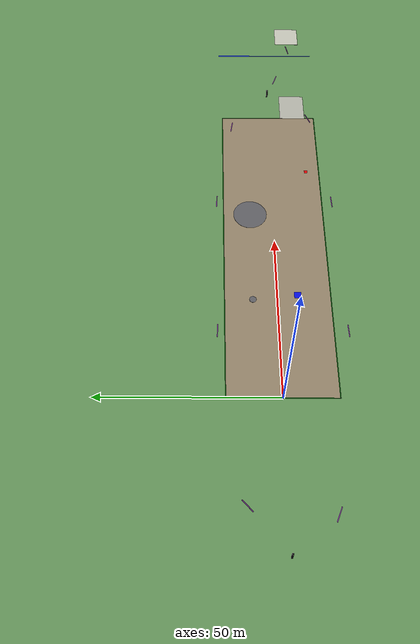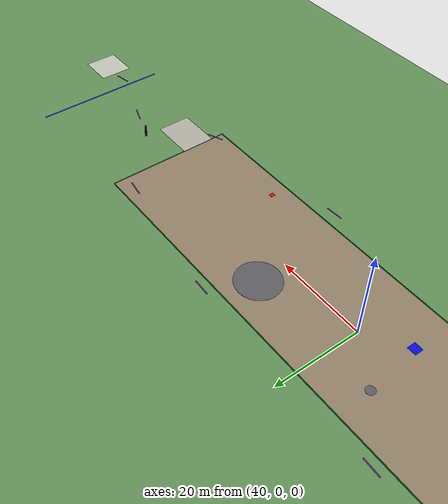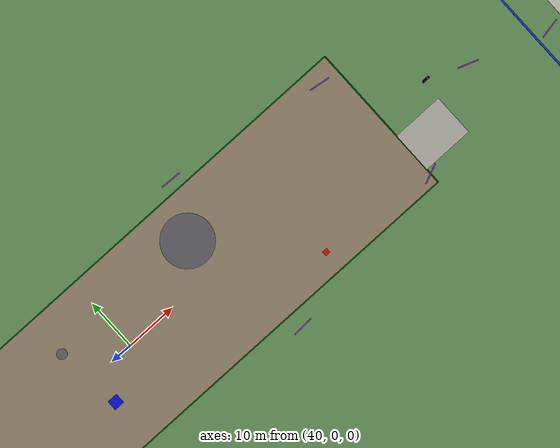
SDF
<sdf version="1.9">
 <world name="teknofest_bozkir">
  <physics name="1ms" type="ignored">
   <max_step_size>0.001</max_step_size>
   <real_time_factor>1.0</real_time_factor>
  </physics>
  <plugin filename="gz-sim-physics-system" name="gz::sim::systems::Physics"/>
  <plugin filename="gz-sim-scene-broadcaster-system" name="gz::sim::systems::SceneBroadcaster"/>
  <plugin filename="gz-sim-sensors-system" name="gz::sim::systems::Sensors">
   <render_engine>ogre2</render_engine>
  </plugin>
  <plugin filename="gz-sim-imu-system" name="gz::sim::systems::Imu"/>
  <plugin filename="gz-sim-user-commands-system" name="gz::sim::systems::UserCommands"/>
  <light type="directional" name="sun">
   <pose>0 0 35 0 0 0</pose>
   <diffuse>0.9 0.85 0.8 1</diffuse>
   <specular>0.1 0.1 0.1 1</specular>
   <direction>-0.45 0.20 -0.87</direction>
  </light>
  <model name="outside_green_field">
   <static>true</static>
   <pose>50 0 0 0 0 0</pose>
   <link name="link">
    <collision name="collision">
     <geometry><plane><normal>0 0 1</normal><size>240 100</size></plane></geometry>
    </collision>
    <visual name="visual">
     <geometry><plane><normal>0 0 1</normal><size>240 100</size></plane></geometry>
     <material><ambient>0.34 0.50 0.30 1</ambient><diffuse>0.38 0.56 0.34 1</diffuse></material>
    </visual>
   </link>
  </model>
  <model name="scan_area_dry_soil">
   <static>true</static>
   <pose>50 0 0.006 0 0 0</pose>
   <link name="link">
    <collision name="collision"><geometry><box><size>100 30 0.01</size></box></geometry></collision>
    <visual name="visual">
     <geometry><box><size>100 30 0.01</size></box></geometry>
     <material><ambient>0.50 0.45 0.36 1</ambient><diffuse>0.56 0.50 0.40 1</diffuse></material>
    </visual>
   </link>
  </model>
  <model name="scan_area_border">
   <static>true</static>
   <pose>50 0 0.02 0 0 0</pose>
   <link name="north">
    <visual name="visual">
     <pose>0 15 0 0 0 0</pose>
     <geometry><box><size>100 0.25 0.02</size></box></geometry>
     <material><ambient>0.0 0.30 0.0 1</ambient><diffuse>0.0 0.30 0.0 1</diffuse></material>
    </visual>
   </link>
   <link name="south">
    <visual name="visual">
     <pose>0 -15 0 0 0 0</pose>
     <geometry><box><size>100 0.25 0.02</size></box></geometry>
     <material><ambient>0.0 0.30 0.0 1</ambient><diffuse>0.0 0.30 0.0 1</diffuse></material>
    </visual>
   </link>
   <link name="east">
    <visual name="visual">
     <pose>50 0 0 0 0 0</pose>
     <geometry><box><size>0.25 30 0.02</size></box></geometry>
     <material><ambient>0.0 0.30 0.0 1</ambient><diffuse>0.0 0.30 0.0 1</diffuse></material>
    </visual>
   </link>
   <link name="west">
    <visual name="visual">
     <pose>-50 0 0 0 0 0</pose>
     <geometry><box><size>0.25 30 0.02</size></box></geometry>
     <material><ambient>0.0 0.30 0.0 1</ambient><diffuse>0.0 0.30 0.0 1</diffuse></material>
    </visual>
   </link>
  </model>
  <model name="pole_1">
   <static>true</static>
   <pose>110 0 1.5 0 0 0</pose>
   <link name="link">
    <collision name="collision">
     <geometry><cylinder><radius>0.25</radius><length>3.0</length></cylinder></geometry>
    </collision>
    <visual name="visual">
     <geometry><cylinder><radius>0.25</radius><length>3.0</length></cylinder></geometry>
     <material><ambient>0.02 0.02 0.02 1</ambient><diffuse>0.02 0.02 0.02 1</diffuse></material>
    </visual>
   </link>
  </model>
  <model name="pole_2">
   <static>true</static>
   <pose>-40 0 1.5 0 0 0</pose>
   <link name="link">
    <collision name="collision">
     <geometry><cylinder><radius>0.25</radius><length>3.0</length></cylinder></geometry>
    </collision>
    <visual name="visual">
     <geometry><cylinder><radius>0.25</radius><length>3.0</length></cylinder></geometry>
     <material><ambient>0.02 0.02 0.02 1</ambient><diffuse>0.02 0.02 0.02 1</diffuse></material>
    </visual>
   </link>
  </model>
  <model name="start_finish_line">
   <static>true</static>
   <pose>130 0 0.03 0 0 0</pose>
   <link name="link">
    <visual name="visual">
     <geometry><box><size>0.35 32 0.03</size></box></geometry>
     <material><ambient>0.05 0.18 0.85 1</ambient><diffuse>0.05 0.18 0.85 1</diffuse></material>
    </visual>
   </link>
  </model>
  <model name="takeoff_pad">
   <static>true</static>
   <pose>140 -8 0.025 0 0 0</pose>
   <link name="link">
    <visual name="visual">
     <geometry><box><size>8 8 0.02</size></box></geometry>
     <material><ambient>0.75 0.75 0.70 1</ambient><diffuse>0.75 0.75 0.70 1</diffuse></material>
    </visual>
   </link>
  </model>
  <model name="landing_zone">
   <static>true</static>
   <pose>105 -8 0.028 0 0 0</pose>
   <link name="link">
    <visual name="visual">
     <geometry><box><size>10 8 0.02</size></box></geometry>
     <material><ambient>0.68 0.68 0.64 1</ambient><diffuse>0.68 0.68 0.64 1</diffuse></material>
    </visual>
   </link>
  </model>
  <model name="route_markers">
   <static>true</static>
   <link name="m1">
    <visual name="visual">
     <pose>133 -8 0.04 0 0 0.2</pose>
     <geometry><box><size>4 0.25 0.02</size></box></geometry>
     <material><ambient>0.45 0.18 0.55 1</ambient><diffuse>0.45 0.18 0.55 1</diffuse></material>
    </visual>
   </link>
   <link name="m2">
    <visual name="visual">
     <pose>118 -3 0.04 0 0 2.8</pose>
     <geometry><box><size>4 0.25 0.02</size></box></geometry>
     <material><ambient>0.45 0.18 0.55 1</ambient><diffuse>0.45 0.18 0.55 1</diffuse></material>
    </visual>
   </link>
   <link name="m3">
    <visual name="visual">
     <pose>96 12 0.04 0 0 3.0</pose>
     <geometry><box><size>4 0.25 0.02</size></box></geometry>
     <material><ambient>0.45 0.18 0.55 1</ambient><diffuse>0.45 0.18 0.55 1</diffuse></material>
    </visual>
   </link>
   <link name="m4">
    <visual name="visual">
     <pose>65 17 0.04 0 0 3.1</pose>
     <geometry><box><size>4 0.25 0.02</size></box></geometry>
     <material><ambient>0.45 0.18 0.55 1</ambient><diffuse>0.45 0.18 0.55 1</diffuse></material>
    </visual>
   </link>
   <link name="m5">
    <visual name="visual">
     <pose>20 17 0.04 0 0 3.1</pose>
     <geometry><box><size>4 0.25 0.02</size></box></geometry>
     <material><ambient>0.45 0.18 0.55 1</ambient><diffuse>0.45 0.18 0.55 1</diffuse></material>
    </visual>
   </link>
   <link name="m6">
    <visual name="visual">
     <pose>-28 10 0.04 0 0 -2.4</pose>
     <geometry><box><size>4 0.25 0.02</size></box></geometry>
     <material><ambient>0.45 0.18 0.55 1</ambient><diffuse>0.45 0.18 0.55 1</diffuse></material>
    </visual>
   </link>
   <link name="m7">
    <visual name="visual">
     <pose>-30 -12 0.04 0 0 -0.4</pose>
     <geometry><box><size>4 0.25 0.02</size></box></geometry>
     <material><ambient>0.45 0.18 0.55 1</ambient><diffuse>0.45 0.18 0.55 1</diffuse></material>
    </visual>
   </link>
   <link name="m8">
    <visual name="visual">
     <pose>20 -19 0.04 0 0 0.05</pose>
     <geometry><box><size>4 0.25 0.02</size></box></geometry>
     <material><ambient>0.45 0.18 0.55 1</ambient><diffuse>0.45 0.18 0.55 1</diffuse></material>
    </visual>
   </link>
   <link name="m9">
    <visual name="visual">
     <pose>65 -18 0.04 0 0 0.05</pose>
     <geometry><box><size>4 0.25 0.02</size></box></geometry>
     <material><ambient>0.45 0.18 0.55 1</ambient><diffuse>0.45 0.18 0.55 1</diffuse></material>
    </visual>
   </link>
   <link name="m10">
    <visual name="visual">
     <pose>100 -13 0.04 0 0 0.4</pose>
     <geometry><box><size>4 0.25 0.02</size></box></geometry>
     <material><ambient>0.45 0.18 0.55 1</ambient><diffuse>0.45 0.18 0.55 1</diffuse></material>
    </visual>
   </link>
  </model>
  <model name="red_square_target">
   <static>true</static>
   <pose>76.93 -10.94 0.040 0 0 0</pose>
   <link name="link">
    <collision name="collision"><geometry><box><size>1.0 1.0 0.04</size></box></geometry></collision>
    <visual name="visual">
     <geometry><box><size>1.0 1.0 0.04</size></box></geometry>
     <material><ambient>0.85 0.02 0.02 1</ambient><diffuse>0.85 0.02 0.02 1</diffuse></material>
    </visual>
   </link>
  </model>
  <model name="blue_square_target">
   <static>true</static>
   <pose>31.42 -5.72 0.040 0 0 0</pose>
   <link name="link">
    <collision name="collision"><geometry><box><size>2.0 2.0 0.04</size></box></geometry></collision>
    <visual name="visual">
     <geometry><box><size>2.0 2.0 0.04</size></box></geometry>
     <material><ambient>0.02 0.05 0.85 1</ambient><diffuse>0.02 0.05 0.85 1</diffuse></material>
    </visual>
   </link>
  </model>
  <model name="no_drop_circle_2m">
   <static>true</static>
   <pose>30.00 7.00 0.035 0 0 0</pose>
   <link name="link">
    <collision name="collision">
     <geometry><cylinder><radius>1.0</radius><length>0.04</length></cylinder></geometry>
    </collision>
    <visual name="visual">
     <geometry><cylinder><radius>1.0</radius><length>0.04</length></cylinder></geometry>
     <material><ambient>0.36 0.36 0.38 1</ambient><diffuse>0.36 0.36 0.38 1</diffuse></material>
    </visual>
   </link>
  </model>
  <model name="no_drop_circle_10m">
   <static>true</static>
   <pose>60.00 7.00 0.035 0 0 0</pose>
   <link name="link">
    <collision name="collision">
     <geometry><cylinder><radius>5.0</radius><length>0.04</length></cylinder></geometry>
    </collision>
    <visual name="visual">
     <geometry><cylinder><radius>5.0</radius><length>0.04</length></cylinder></geometry>
     <material><ambient>0.36 0.36 0.38 1</ambient><diffuse>0.36 0.36 0.38 1</diffuse></material>
    </visual>
   </link>
  </model>
 </world>
</sdf>
